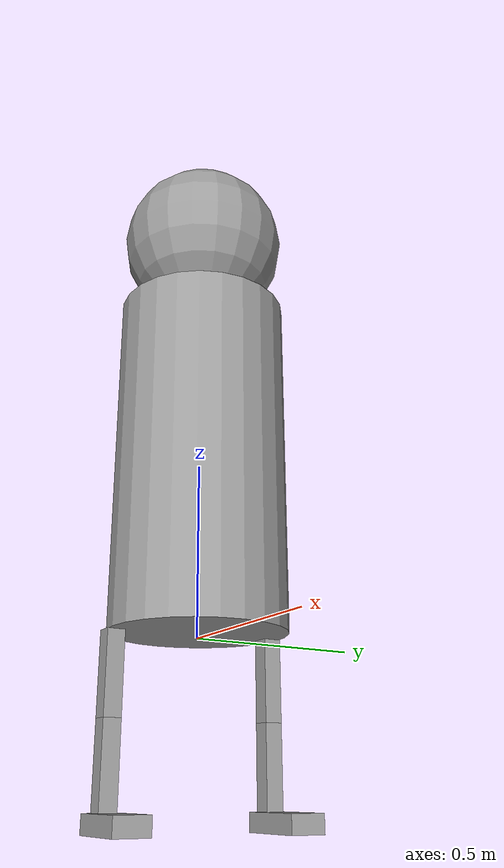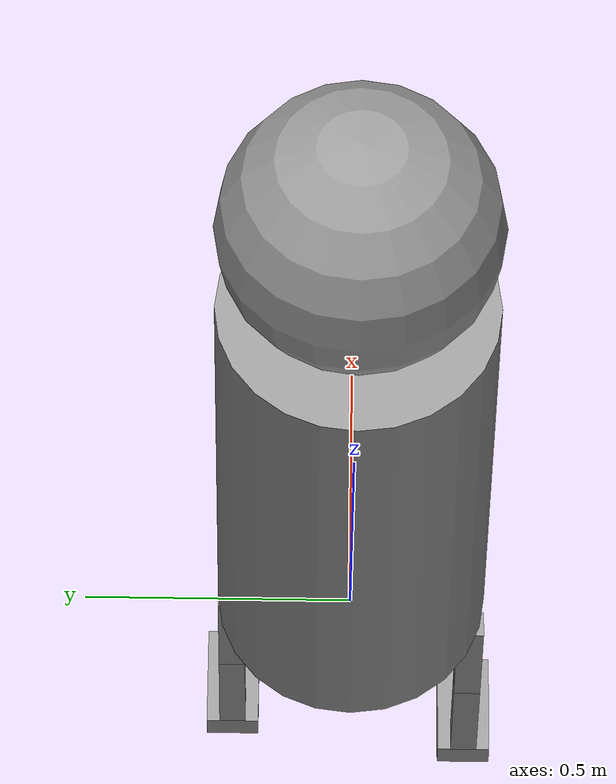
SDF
<?xml version='1.0'?>
<sdf version='1.6'>
  <model name='Android'>
    <link name='link_0_clone'>
      <pose frame=''>0.077813 0.225 -0.462714 0 -0 0</pose>
      <inertial>
        <mass>1</mass>
        <inertia>
          <ixx>0.166667</ixx>
          <ixy>0</ixy>
          <ixz>0</ixz>
          <iyy>0.166667</iyy>
          <iyz>0</iyz>
          <izz>0.166667</izz>
        </inertia>
        <pose frame=''>0 0 0 0 -0 0</pose>
      </inertial>
      <self_collide>0</self_collide>
      <kinematic>0</kinematic>
      <gravity>1</gravity>
      <visual name='visual'>
        <pose frame=''>0 0 0 0 -0 0</pose>
        <geometry>
          <box>
            <size>0.2 0.1 0.05</size>
          </box>
        </geometry>
        <material>
          <lighting>1</lighting>
          <script>
            <uri>file://media/materials/scripts/gazebo.material</uri>
            <name>Gazebo/Grey</name>
          </script>
          <shader type='pixel'>
            <normal_map>__default__</normal_map>
          </shader>
          <ambient>0.3 0.3 0.3 1</ambient>
          <diffuse>0.7 0.7 0.7 1</diffuse>
          <specular>0.01 0.01 0.01 1</specular>
          <emissive>0 0 0 1</emissive>
        </material>
        <transparency>0</transparency>
        <cast_shadows>1</cast_shadows>
      </visual>
      <collision name='collision'>
        <laser_retro>0</laser_retro>
        <max_contacts>10</max_contacts>
        <pose frame=''>0 0 0 0 -0 0</pose>
        <geometry>
          <box>
            <size>0.2 0.1 0.05</size>
          </box>
        </geometry>
        <surface>
          <friction>
            <ode>
              <mu>1</mu>
              <mu2>1</mu2>
              <fdir1>0 0 0</fdir1>
              <slip1>0</slip1>
              <slip2>0</slip2>
            </ode>
            <torsional>
              <coefficient>1</coefficient>
              <patch_radius>0</patch_radius>
              <surface_radius>0</surface_radius>
              <use_patch_radius>1</use_patch_radius>
              <ode>
                <slip>0</slip>
              </ode>
            </torsional>
          </friction>
          <bounce>
            <restitution_coefficient>0</restitution_coefficient>
            <threshold>1e+06</threshold>
          </bounce>
          <contact>
            <collide_without_contact>0</collide_without_contact>
            <collide_without_contact_bitmask>1</collide_without_contact_bitmask>
            <collide_bitmask>1</collide_bitmask>
            <ode>
              <soft_cfm>0</soft_cfm>
              <soft_erp>0.2</soft_erp>
              <kp>1e+13</kp>
              <kd>1</kd>
              <max_vel>0.01</max_vel>
              <min_depth>0</min_depth>
            </ode>
            <bullet>
              <split_impulse>1</split_impulse>
              <split_impulse_penetration_threshold>-0.01</split_impulse_penetration_threshold>
              <soft_cfm>0</soft_cfm>
              <soft_erp>0.2</soft_erp>
              <kp>1e+13</kp>
              <kd>1</kd>
            </bullet>
          </contact>
        </surface>
      </collision>
    </link>
    <link name='link_0_clone_clone'>
      <pose frame=''>0.020312 -0.225 -0.462144 0 -0 0</pose>
      <inertial>
        <mass>1</mass>
        <inertia>
          <ixx>0.166667</ixx>
          <ixy>0</ixy>
          <ixz>0</ixz>
          <iyy>0.166667</iyy>
          <iyz>0</iyz>
          <izz>0.166667</izz>
        </inertia>
        <pose frame=''>0 0 0 0 -0 0</pose>
      </inertial>
      <self_collide>0</self_collide>
      <kinematic>0</kinematic>
      <gravity>1</gravity>
      <visual name='visual'>
        <pose frame=''>0 0 0 0 -0 0</pose>
        <geometry>
          <box>
            <size>0.2 0.1 0.05</size>
          </box>
        </geometry>
        <material>
          <lighting>1</lighting>
          <script>
            <uri>file://media/materials/scripts/gazebo.material</uri>
            <name>Gazebo/Grey</name>
          </script>
          <shader type='pixel'>
            <normal_map>__default__</normal_map>
          </shader>
          <ambient>0.3 0.3 0.3 1</ambient>
          <diffuse>0.7 0.7 0.7 1</diffuse>
          <specular>0.01 0.01 0.01 1</specular>
          <emissive>0 0 0 1</emissive>
        </material>
        <transparency>0</transparency>
        <cast_shadows>1</cast_shadows>
      </visual>
      <collision name='collision'>
        <laser_retro>0</laser_retro>
        <max_contacts>10</max_contacts>
        <pose frame=''>0 0 0 0 -0 0</pose>
        <geometry>
          <box>
            <size>0.2 0.1 0.05</size>
          </box>
        </geometry>
        <surface>
          <friction>
            <ode>
              <mu>1</mu>
              <mu2>1</mu2>
              <fdir1>0 0 0</fdir1>
              <slip1>0</slip1>
              <slip2>0</slip2>
            </ode>
            <torsional>
              <coefficient>1</coefficient>
              <patch_radius>0</patch_radius>
              <surface_radius>0</surface_radius>
              <use_patch_radius>1</use_patch_radius>
              <ode>
                <slip>0</slip>
              </ode>
            </torsional>
          </friction>
          <bounce>
            <restitution_coefficient>0</restitution_coefficient>
            <threshold>1e+06</threshold>
          </bounce>
          <contact>
            <collide_without_contact>0</collide_without_contact>
            <collide_without_contact_bitmask>1</collide_without_contact_bitmask>
            <collide_bitmask>1</collide_bitmask>
            <ode>
              <soft_cfm>0</soft_cfm>
              <soft_erp>0.2</soft_erp>
              <kp>1e+13</kp>
              <kd>1</kd>
              <max_vel>0.01</max_vel>
              <min_depth>0</min_depth>
            </ode>
            <bullet>
              <split_impulse>1</split_impulse>
              <split_impulse_penetration_threshold>-0.01</split_impulse_penetration_threshold>
              <soft_cfm>0</soft_cfm>
              <soft_erp>0.2</soft_erp>
              <kp>1e+13</kp>
              <kd>1</kd>
            </bullet>
          </contact>
        </surface>
      </collision>
    </link>
    <link name='link_1'>
      <pose frame=''>-0.054688 -0.225 -0.099644 0 -0 0</pose>
      <inertial>
        <mass>1</mass>
        <inertia>
          <ixx>0.166667</ixx>
          <ixy>0</ixy>
          <ixz>0</ixz>
          <iyy>0.166667</iyy>
          <iyz>0</iyz>
          <izz>0.166667</izz>
        </inertia>
        <pose frame=''>0 0 0 0 -0 0</pose>
      </inertial>
      <gravity>1</gravity>
      <self_collide>0</self_collide>
      <kinematic>0</kinematic>
      <visual name='visual'>
        <pose frame=''>0 0 0 0 -0 0</pose>
        <geometry>
          <box>
            <size>0.05 0.05 0.225</size>
          </box>
        </geometry>
        <material>
          <lighting>1</lighting>
          <script>
            <uri>file://media/materials/scripts/gazebo.material</uri>
            <name>Gazebo/Grey</name>
          </script>
          <shader type='pixel'>
            <normal_map>__default__</normal_map>
          </shader>
          <ambient>0.3 0.3 0.3 1</ambient>
          <diffuse>0.7 0.7 0.7 1</diffuse>
          <specular>0.01 0.01 0.01 1</specular>
          <emissive>0 0 0 1</emissive>
        </material>
        <transparency>0</transparency>
        <cast_shadows>1</cast_shadows>
      </visual>
      <collision name='collision'>
        <laser_retro>0</laser_retro>
        <max_contacts>10</max_contacts>
        <pose frame=''>0 0 0 0 -0 0</pose>
        <geometry>
          <box>
            <size>0.05 0.05 0.225</size>
          </box>
        </geometry>
        <surface>
          <friction>
            <ode>
              <mu>1</mu>
              <mu2>1</mu2>
              <fdir1>0 0 0</fdir1>
              <slip1>0</slip1>
              <slip2>0</slip2>
            </ode>
            <torsional>
              <coefficient>1</coefficient>
              <patch_radius>0</patch_radius>
              <surface_radius>0</surface_radius>
              <use_patch_radius>1</use_patch_radius>
              <ode>
                <slip>0</slip>
              </ode>
            </torsional>
          </friction>
          <bounce>
            <restitution_coefficient>0</restitution_coefficient>
            <threshold>1e+06</threshold>
          </bounce>
          <contact>
            <collide_without_contact>0</collide_without_contact>
            <collide_without_contact_bitmask>1</collide_without_contact_bitmask>
            <collide_bitmask>1</collide_bitmask>
            <ode>
              <soft_cfm>0</soft_cfm>
              <soft_erp>0.2</soft_erp>
              <kp>1e+13</kp>
              <kd>1</kd>
              <max_vel>0.01</max_vel>
              <min_depth>0</min_depth>
            </ode>
            <bullet>
              <split_impulse>1</split_impulse>
              <split_impulse_penetration_threshold>-0.01</split_impulse_penetration_threshold>
              <soft_cfm>0</soft_cfm>
              <soft_erp>0.2</soft_erp>
              <kp>1e+13</kp>
              <kd>1</kd>
            </bullet>
          </contact>
        </surface>
      </collision>
    </link>
    <link name='link_1_clone'>
      <pose frame=''>-0.054688 -0.225 -0.324644 0 -0 0</pose>
      <inertial>
        <mass>1</mass>
        <inertia>
          <ixx>0.166667</ixx>
          <ixy>0</ixy>
          <ixz>0</ixz>
          <iyy>0.166667</iyy>
          <iyz>0</iyz>
          <izz>0.166667</izz>
        </inertia>
        <pose frame=''>0 0 0 0 -0 0</pose>
      </inertial>
      <self_collide>0</self_collide>
      <kinematic>0</kinematic>
      <gravity>1</gravity>
      <visual name='visual'>
        <pose frame=''>0 0 0 0 -0 0</pose>
        <geometry>
          <box>
            <size>0.05 0.05 0.225</size>
          </box>
        </geometry>
        <material>
          <lighting>1</lighting>
          <script>
            <uri>file://media/materials/scripts/gazebo.material</uri>
            <name>Gazebo/Grey</name>
          </script>
          <shader type='pixel'>
            <normal_map>__default__</normal_map>
          </shader>
          <ambient>0.3 0.3 0.3 1</ambient>
          <diffuse>0.7 0.7 0.7 1</diffuse>
          <specular>0.01 0.01 0.01 1</specular>
          <emissive>0 0 0 1</emissive>
        </material>
        <transparency>0</transparency>
        <cast_shadows>1</cast_shadows>
      </visual>
      <collision name='collision'>
        <laser_retro>0</laser_retro>
        <max_contacts>10</max_contacts>
        <pose frame=''>0 0 0 0 -0 0</pose>
        <geometry>
          <box>
            <size>0.05 0.05 0.225</size>
          </box>
        </geometry>
        <surface>
          <friction>
            <ode>
              <mu>1</mu>
              <mu2>1</mu2>
              <fdir1>0 0 0</fdir1>
              <slip1>0</slip1>
              <slip2>0</slip2>
            </ode>
            <torsional>
              <coefficient>1</coefficient>
              <patch_radius>0</patch_radius>
              <surface_radius>0</surface_radius>
              <use_patch_radius>1</use_patch_radius>
              <ode>
                <slip>0</slip>
              </ode>
            </torsional>
          </friction>
          <bounce>
            <restitution_coefficient>0</restitution_coefficient>
            <threshold>1e+06</threshold>
          </bounce>
          <contact>
            <collide_without_contact>0</collide_without_contact>
            <collide_without_contact_bitmask>1</collide_without_contact_bitmask>
            <collide_bitmask>1</collide_bitmask>
            <ode>
              <soft_cfm>0</soft_cfm>
              <soft_erp>0.2</soft_erp>
              <kp>1e+13</kp>
              <kd>1</kd>
              <max_vel>0.01</max_vel>
              <min_depth>0</min_depth>
            </ode>
            <bullet>
              <split_impulse>1</split_impulse>
              <split_impulse_penetration_threshold>-0.01</split_impulse_penetration_threshold>
              <soft_cfm>0</soft_cfm>
              <soft_erp>0.2</soft_erp>
              <kp>1e+13</kp>
              <kd>1</kd>
            </bullet>
          </contact>
        </surface>
      </collision>
    </link>
    <link name='link_1_clone_clone'>
      <pose frame=''>0.002813 0.225 -0.100214 0 -0 0</pose>
      <inertial>
        <mass>1</mass>
        <inertia>
          <ixx>0.166667</ixx>
          <ixy>0</ixy>
          <ixz>0</ixz>
          <iyy>0.166667</iyy>
          <iyz>0</iyz>
          <izz>0.166667</izz>
        </inertia>
        <pose frame=''>0 0 0 0 -0 0</pose>
      </inertial>
      <self_collide>0</self_collide>
      <kinematic>0</kinematic>
      <gravity>1</gravity>
      <visual name='visual'>
        <pose frame=''>0 0 0 0 -0 0</pose>
        <geometry>
          <box>
            <size>0.05 0.05 0.225</size>
          </box>
        </geometry>
        <material>
          <lighting>1</lighting>
          <script>
            <uri>file://media/materials/scripts/gazebo.material</uri>
            <name>Gazebo/Grey</name>
          </script>
          <shader type='pixel'>
            <normal_map>__default__</normal_map>
          </shader>
          <ambient>0.3 0.3 0.3 1</ambient>
          <diffuse>0.7 0.7 0.7 1</diffuse>
          <specular>0.01 0.01 0.01 1</specular>
          <emissive>0 0 0 1</emissive>
        </material>
        <transparency>0</transparency>
        <cast_shadows>1</cast_shadows>
      </visual>
      <collision name='collision'>
        <laser_retro>0</laser_retro>
        <max_contacts>10</max_contacts>
        <pose frame=''>0 0 0 0 -0 0</pose>
        <geometry>
          <box>
            <size>0.05 0.05 0.225</size>
          </box>
        </geometry>
        <surface>
          <friction>
            <ode>
              <mu>1</mu>
              <mu2>1</mu2>
              <fdir1>0 0 0</fdir1>
              <slip1>0</slip1>
              <slip2>0</slip2>
            </ode>
            <torsional>
              <coefficient>1</coefficient>
              <patch_radius>0</patch_radius>
              <surface_radius>0</surface_radius>
              <use_patch_radius>1</use_patch_radius>
              <ode>
                <slip>0</slip>
              </ode>
            </torsional>
          </friction>
          <bounce>
            <restitution_coefficient>0</restitution_coefficient>
            <threshold>1e+06</threshold>
          </bounce>
          <contact>
            <collide_without_contact>0</collide_without_contact>
            <collide_without_contact_bitmask>1</collide_without_contact_bitmask>
            <collide_bitmask>1</collide_bitmask>
            <ode>
              <soft_cfm>0</soft_cfm>
              <soft_erp>0.2</soft_erp>
              <kp>1e+13</kp>
              <kd>1</kd>
              <max_vel>0.01</max_vel>
              <min_depth>0</min_depth>
            </ode>
            <bullet>
              <split_impulse>1</split_impulse>
              <split_impulse_penetration_threshold>-0.01</split_impulse_penetration_threshold>
              <soft_cfm>0</soft_cfm>
              <soft_erp>0.2</soft_erp>
              <kp>1e+13</kp>
              <kd>1</kd>
            </bullet>
          </contact>
        </surface>
      </collision>
    </link>
    <link name='link_1_clone_clone_clone'>
      <pose frame=''>0.002813 0.225 -0.325214 0 -0 0</pose>
      <inertial>
        <mass>1</mass>
        <inertia>
          <ixx>0.166667</ixx>
          <ixy>0</ixy>
          <ixz>0</ixz>
          <iyy>0.166667</iyy>
          <iyz>0</iyz>
          <izz>0.166667</izz>
        </inertia>
        <pose frame=''>0 0 0 0 -0 0</pose>
      </inertial>
      <self_collide>0</self_collide>
      <kinematic>0</kinematic>
      <gravity>1</gravity>
      <visual name='visual'>
        <pose frame=''>0 0 0 0 -0 0</pose>
        <geometry>
          <box>
            <size>0.05 0.05 0.225</size>
          </box>
        </geometry>
        <material>
          <lighting>1</lighting>
          <script>
            <uri>file://media/materials/scripts/gazebo.material</uri>
            <name>Gazebo/Grey</name>
          </script>
          <shader type='pixel'>
            <normal_map>__default__</normal_map>
          </shader>
          <ambient>0.3 0.3 0.3 1</ambient>
          <diffuse>0.7 0.7 0.7 1</diffuse>
          <specular>0.01 0.01 0.01 1</specular>
          <emissive>0 0 0 1</emissive>
        </material>
        <transparency>0</transparency>
        <cast_shadows>1</cast_shadows>
      </visual>
      <collision name='collision'>
        <laser_retro>0</laser_retro>
        <max_contacts>10</max_contacts>
        <pose frame=''>0 0 0 0 -0 0</pose>
        <geometry>
          <box>
            <size>0.05 0.05 0.225</size>
          </box>
        </geometry>
        <surface>
          <friction>
            <ode>
              <mu>1</mu>
              <mu2>1</mu2>
              <fdir1>0 0 0</fdir1>
              <slip1>0</slip1>
              <slip2>0</slip2>
            </ode>
            <torsional>
              <coefficient>1</coefficient>
              <patch_radius>0</patch_radius>
              <surface_radius>0</surface_radius>
              <use_patch_radius>1</use_patch_radius>
              <ode>
                <slip>0</slip>
              </ode>
            </torsional>
          </friction>
          <bounce>
            <restitution_coefficient>0</restitution_coefficient>
            <threshold>1e+06</threshold>
          </bounce>
          <contact>
            <collide_without_contact>0</collide_without_contact>
            <collide_without_contact_bitmask>1</collide_without_contact_bitmask>
            <collide_bitmask>1</collide_bitmask>
            <ode>
              <soft_cfm>0</soft_cfm>
              <soft_erp>0.2</soft_erp>
              <kp>1e+13</kp>
              <kd>1</kd>
              <max_vel>0.01</max_vel>
              <min_depth>0</min_depth>
            </ode>
            <bullet>
              <split_impulse>1</split_impulse>
              <split_impulse_penetration_threshold>-0.01</split_impulse_penetration_threshold>
              <soft_cfm>0</soft_cfm>
              <soft_erp>0.2</soft_erp>
              <kp>1e+13</kp>
              <kd>1</kd>
            </bullet>
          </contact>
        </surface>
      </collision>
    </link>
    <link name='link_2'>
      <pose frame=''>0.002813 0 0.512286 0 -0 0</pose>
      <inertial>
        <mass>1</mass>
        <inertia>
          <ixx>0.145833</ixx>
          <ixy>0</ixy>
          <ixz>0</ixz>
          <iyy>0.145833</iyy>
          <iyz>0</iyz>
          <izz>0.125</izz>
        </inertia>
        <pose frame=''>0 0 0 0 -0 0</pose>
      </inertial>
      <gravity>1</gravity>
      <self_collide>0</self_collide>
      <kinematic>0</kinematic>
      <visual name='visual'>
        <pose frame=''>0 0 0 0 -0 0</pose>
        <geometry>
          <cylinder>
            <radius>0.25</radius>
            <length>1</length>
          </cylinder>
        </geometry>
        <material>
          <lighting>1</lighting>
          <script>
            <uri>file://media/materials/scripts/gazebo.material</uri>
            <name>Gazebo/Grey</name>
          </script>
          <shader type='pixel'>
            <normal_map>__default__</normal_map>
          </shader>
          <ambient>0.3 0.3 0.3 1</ambient>
          <diffuse>0.7 0.7 0.7 1</diffuse>
          <specular>0.01 0.01 0.01 1</specular>
          <emissive>0 0 0 1</emissive>
        </material>
        <transparency>0</transparency>
        <cast_shadows>1</cast_shadows>
      </visual>
      <collision name='collision'>
        <laser_retro>0</laser_retro>
        <max_contacts>10</max_contacts>
        <pose frame=''>0 0 0 0 -0 0</pose>
        <geometry>
          <cylinder>
            <radius>0.25</radius>
            <length>1</length>
          </cylinder>
        </geometry>
        <surface>
          <friction>
            <ode>
              <mu>1</mu>
              <mu2>1</mu2>
              <fdir1>0 0 0</fdir1>
              <slip1>0</slip1>
              <slip2>0</slip2>
            </ode>
            <torsional>
              <coefficient>1</coefficient>
              <patch_radius>0</patch_radius>
              <surface_radius>0</surface_radius>
              <use_patch_radius>1</use_patch_radius>
              <ode>
                <slip>0</slip>
              </ode>
            </torsional>
          </friction>
          <bounce>
            <restitution_coefficient>0</restitution_coefficient>
            <threshold>1e+06</threshold>
          </bounce>
          <contact>
            <collide_without_contact>0</collide_without_contact>
            <collide_without_contact_bitmask>1</collide_without_contact_bitmask>
            <collide_bitmask>1</collide_bitmask>
            <ode>
              <soft_cfm>0</soft_cfm>
              <soft_erp>0.2</soft_erp>
              <kp>1e+13</kp>
              <kd>1</kd>
              <max_vel>0.01</max_vel>
              <min_depth>0</min_depth>
            </ode>
            <bullet>
              <split_impulse>1</split_impulse>
              <split_impulse_penetration_threshold>-0.01</split_impulse_penetration_threshold>
              <soft_cfm>0</soft_cfm>
              <soft_erp>0.2</soft_erp>
              <kp>1e+13</kp>
              <kd>1</kd>
            </bullet>
          </contact>
        </surface>
      </collision>
    </link>
    <link name='link_3'>
      <pose frame=''>0.002813 0 1.26229 0 -0 0</pose>
      <inertial>
        <mass>1</mass>
        <inertia>
          <ixx>0.1</ixx>
          <ixy>0</ixy>
          <ixz>0</ixz>
          <iyy>0.1</iyy>
          <iyz>0</iyz>
          <izz>0.1</izz>
        </inertia>
        <pose frame=''>0 0 0 0 -0 0</pose>
      </inertial>
      <gravity>1</gravity>
      <self_collide>0</self_collide>
      <kinematic>0</kinematic>
      <visual name='visual'>
        <pose frame=''>0 0 0 0 -0 0</pose>
        <geometry>
          <sphere>
            <radius>0.25</radius>
          </sphere>
        </geometry>
        <material>
          <lighting>1</lighting>
          <script>
            <uri>file://media/materials/scripts/gazebo.material</uri>
            <name>Gazebo/Grey</name>
          </script>
          <shader type='pixel'>
            <normal_map>__default__</normal_map>
          </shader>
          <ambient>0.3 0.3 0.3 1</ambient>
          <diffuse>0.7 0.7 0.7 1</diffuse>
          <specular>0.01 0.01 0.01 1</specular>
          <emissive>0 0 0 1</emissive>
        </material>
        <transparency>0</transparency>
        <cast_shadows>1</cast_shadows>
      </visual>
      <collision name='collision'>
        <laser_retro>0</laser_retro>
        <max_contacts>10</max_contacts>
        <pose frame=''>0 0 0 0 -0 0</pose>
        <geometry>
          <sphere>
            <radius>0.25</radius>
          </sphere>
        </geometry>
        <surface>
          <friction>
            <ode>
              <mu>1</mu>
              <mu2>1</mu2>
              <fdir1>0 0 0</fdir1>
              <slip1>0</slip1>
              <slip2>0</slip2>
            </ode>
            <torsional>
              <coefficient>1</coefficient>
              <patch_radius>0</patch_radius>
              <surface_radius>0</surface_radius>
              <use_patch_radius>1</use_patch_radius>
              <ode>
                <slip>0</slip>
              </ode>
            </torsional>
          </friction>
          <bounce>
            <restitution_coefficient>0</restitution_coefficient>
            <threshold>1e+06</threshold>
          </bounce>
          <contact>
            <collide_without_contact>0</collide_without_contact>
            <collide_without_contact_bitmask>1</collide_without_contact_bitmask>
            <collide_bitmask>1</collide_bitmask>
            <ode>
              <soft_cfm>0</soft_cfm>
              <soft_erp>0.2</soft_erp>
              <kp>1e+13</kp>
              <kd>1</kd>
              <max_vel>0.01</max_vel>
              <min_depth>0</min_depth>
            </ode>
            <bullet>
              <split_impulse>1</split_impulse>
              <split_impulse_penetration_threshold>-0.01</split_impulse_penetration_threshold>
              <soft_cfm>0</soft_cfm>
              <soft_erp>0.2</soft_erp>
              <kp>1e+13</kp>
              <kd>1</kd>
            </bullet>
          </contact>
        </surface>
      </collision>
    </link>
    <joint name='link_1_JOINT_14' type='revolute'>
      <parent>link_1</parent>
      <child>link_1_clone</child>
      <pose frame=''>0 0 0 0 -0 0</pose>
      <axis>
        <xyz>-1 -0 -0</xyz>
        <use_parent_model_frame>0</use_parent_model_frame>
        <limit>
          <lower>-1.79769e+308</lower>
          <upper>1.79769e+308</upper>
          <effort>-1</effort>
          <velocity>-1</velocity>
        </limit>
        <dynamics>
          <spring_reference>0</spring_reference>
          <spring_stiffness>0</spring_stiffness>
          <damping>0</damping>
        </dynamics>
      </axis>
      <physics>
        <ode>
          <limit>
            <cfm>0</cfm>
            <erp>0.2</erp>
          </limit>
          <suspension>
            <cfm>0</cfm>
            <erp>0.2</erp>
          </suspension>
        </ode>
      </physics>
    </joint>
    <joint name='link_1_clone_JOINT_15' type='revolute'>
      <parent>link_1_clone</parent>
      <child>link_0_clone_clone</child>
      <pose frame=''>0 0 0 0 -0 0</pose>
      <axis>
        <xyz>1 0 0</xyz>
        <use_parent_model_frame>0</use_parent_model_frame>
        <limit>
          <lower>-1.79769e+308</lower>
          <upper>1.79769e+308</upper>
          <effort>-1</effort>
          <velocity>-1</velocity>
        </limit>
        <dynamics>
          <spring_reference>0</spring_reference>
          <spring_stiffness>0</spring_stiffness>
          <damping>0</damping>
        </dynamics>
      </axis>
      <physics>
        <ode>
          <limit>
            <cfm>0</cfm>
            <erp>0.2</erp>
          </limit>
          <suspension>
            <cfm>0</cfm>
            <erp>0.2</erp>
          </suspension>
        </ode>
      </physics>
    </joint>
    <joint name='link_1_clone_clone_JOINT_11' type='revolute'>
      <parent>link_1_clone_clone</parent>
      <child>link_1_clone_clone_clone</child>
      <pose frame=''>0 0 0 0 -0 0</pose>
      <axis>
        <xyz>-1 -0 -0</xyz>
        <use_parent_model_frame>0</use_parent_model_frame>
        <limit>
          <lower>-1.79769e+308</lower>
          <upper>1.79769e+308</upper>
          <effort>-1</effort>
          <velocity>-1</velocity>
        </limit>
        <dynamics>
          <spring_reference>0</spring_reference>
          <spring_stiffness>0</spring_stiffness>
          <damping>0</damping>
        </dynamics>
      </axis>
      <physics>
        <ode>
          <limit>
            <cfm>0</cfm>
            <erp>0.2</erp>
          </limit>
          <suspension>
            <cfm>0</cfm>
            <erp>0.2</erp>
          </suspension>
        </ode>
      </physics>
    </joint>
    <joint name='link_1_clone_clone_clone_JOINT_12' type='revolute'>
      <parent>link_1_clone_clone_clone</parent>
      <child>link_0_clone</child>
      <pose frame=''>0 0 0 0 -0 0</pose>
      <axis>
        <xyz>1 0 0</xyz>
        <use_parent_model_frame>0</use_parent_model_frame>
        <limit>
          <lower>-1.79769e+308</lower>
          <upper>1.79769e+308</upper>
          <effort>-1</effort>
          <velocity>-1</velocity>
        </limit>
        <dynamics>
          <spring_reference>0</spring_reference>
          <spring_stiffness>0</spring_stiffness>
          <damping>0</damping>
        </dynamics>
      </axis>
      <physics>
        <ode>
          <limit>
            <cfm>0</cfm>
            <erp>0.2</erp>
          </limit>
          <suspension>
            <cfm>0</cfm>
            <erp>0.2</erp>
          </suspension>
        </ode>
      </physics>
    </joint>
    <joint name='link_2_JOINT_10' type='revolute'>
      <parent>link_2</parent>
      <child>link_1_clone_clone</child>
      <pose frame=''>0 0 0 0 -0 0</pose>
      <axis>
        <xyz>1 0 0</xyz>
        <use_parent_model_frame>0</use_parent_model_frame>
        <limit>
          <lower>-1.79769e+308</lower>
          <upper>1.79769e+308</upper>
          <effort>-1</effort>
          <velocity>-1</velocity>
        </limit>
        <dynamics>
          <spring_reference>0</spring_reference>
          <spring_stiffness>0</spring_stiffness>
          <damping>0</damping>
        </dynamics>
      </axis>
      <physics>
        <ode>
          <limit>
            <cfm>0</cfm>
            <erp>0.2</erp>
          </limit>
          <suspension>
            <cfm>0</cfm>
            <erp>0.2</erp>
          </suspension>
        </ode>
      </physics>
    </joint>
    <joint name='link_2_JOINT_13' type='revolute'>
      <parent>link_2</parent>
      <child>link_1</child>
      <pose frame=''>0 0 0 0 -0 0</pose>
      <axis>
        <xyz>1 0 0</xyz>
        <use_parent_model_frame>0</use_parent_model_frame>
        <limit>
          <lower>-1.79769e+308</lower>
          <upper>1.79769e+308</upper>
          <effort>-1</effort>
          <velocity>-1</velocity>
        </limit>
        <dynamics>
          <spring_reference>0</spring_reference>
          <spring_stiffness>0</spring_stiffness>
          <damping>0</damping>
        </dynamics>
      </axis>
      <physics>
        <ode>
          <limit>
            <cfm>0</cfm>
            <erp>0.2</erp>
          </limit>
          <suspension>
            <cfm>0</cfm>
            <erp>0.2</erp>
          </suspension>
        </ode>
      </physics>
    </joint>
    <joint name='link_3_JOINT_20' type='revolute'>
      <parent>link_2</parent>
      <child>link_3</child>
      <pose frame=''>0 0 0 0 -0 0</pose>
      <axis>
        <xyz>0 0 1</xyz>
        <use_parent_model_frame>0</use_parent_model_frame>
        <limit>
          <lower>-1.79769e+308</lower>
          <upper>1.79769e+308</upper>
          <effort>-1</effort>
          <velocity>-1</velocity>
        </limit>
        <dynamics>
          <spring_reference>0</spring_reference>
          <spring_stiffness>0</spring_stiffness>
          <damping>0</damping>
        </dynamics>
      </axis>
      <physics>
        <ode>
          <limit>
            <cfm>0</cfm>
            <erp>0.2</erp>
          </limit>
          <suspension>
            <cfm>0</cfm>
            <erp>0.2</erp>
          </suspension>
        </ode>
      </physics>
    </joint>
    <static>0</static>
    <allow_auto_disable>1</allow_auto_disable>
  </model>
</sdf>
